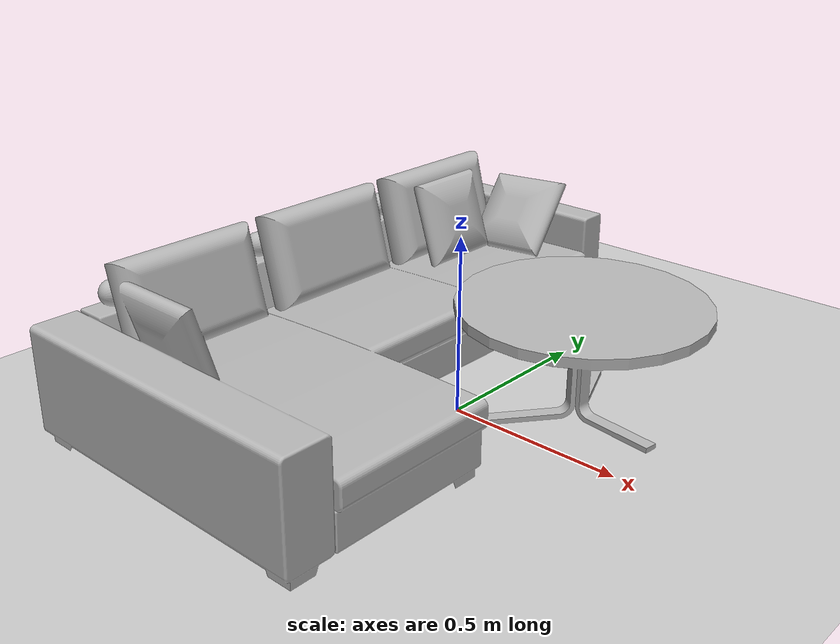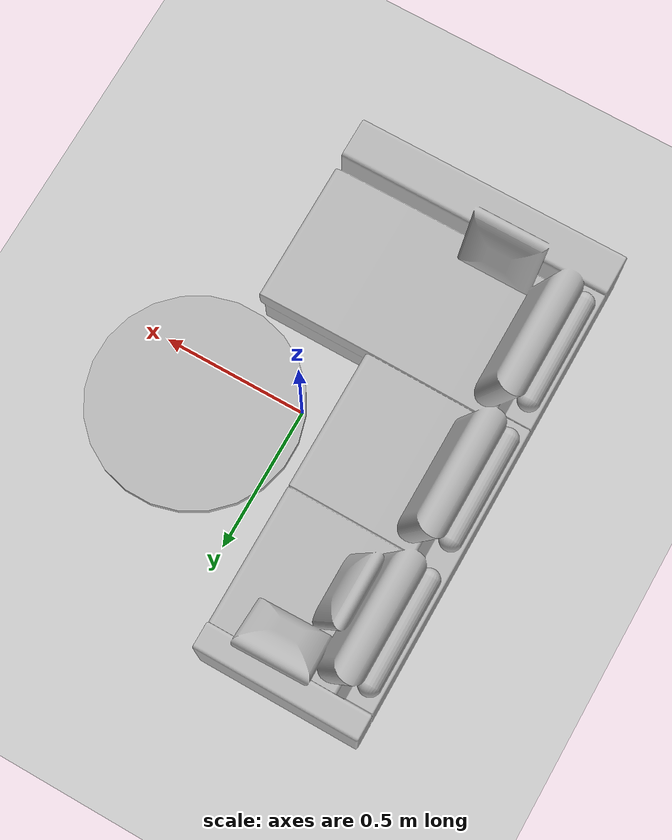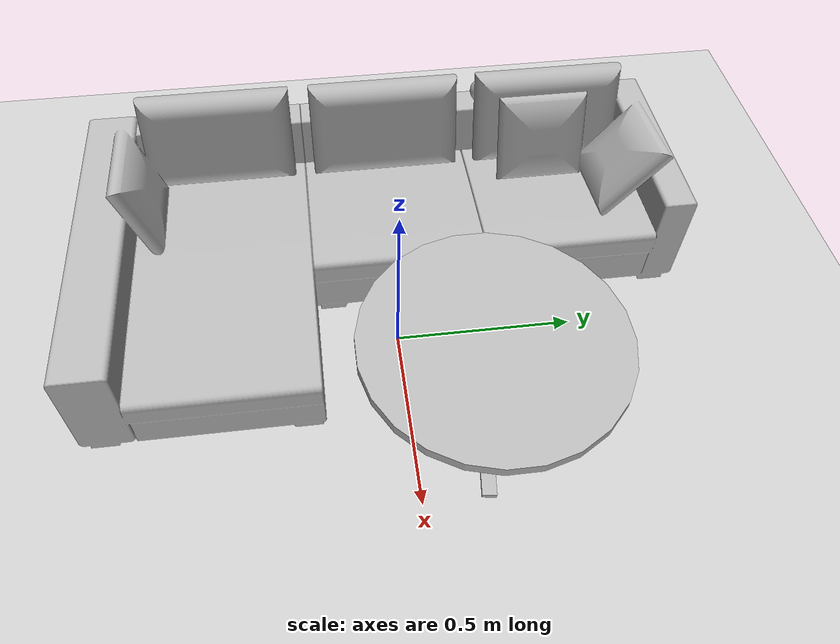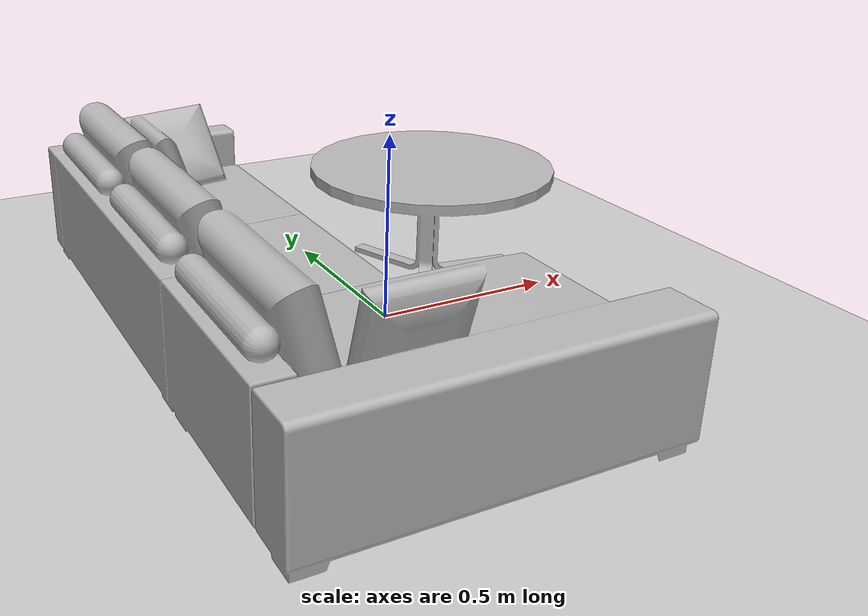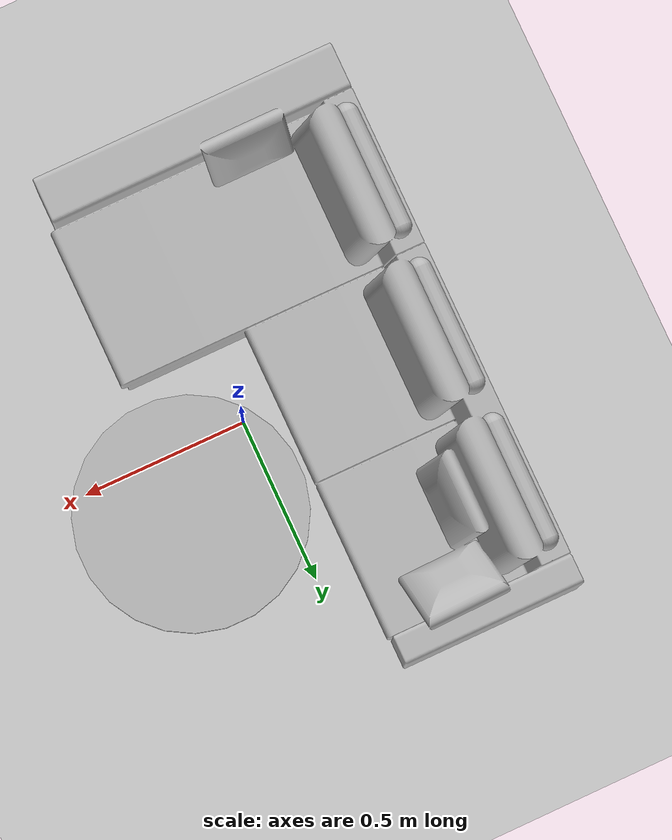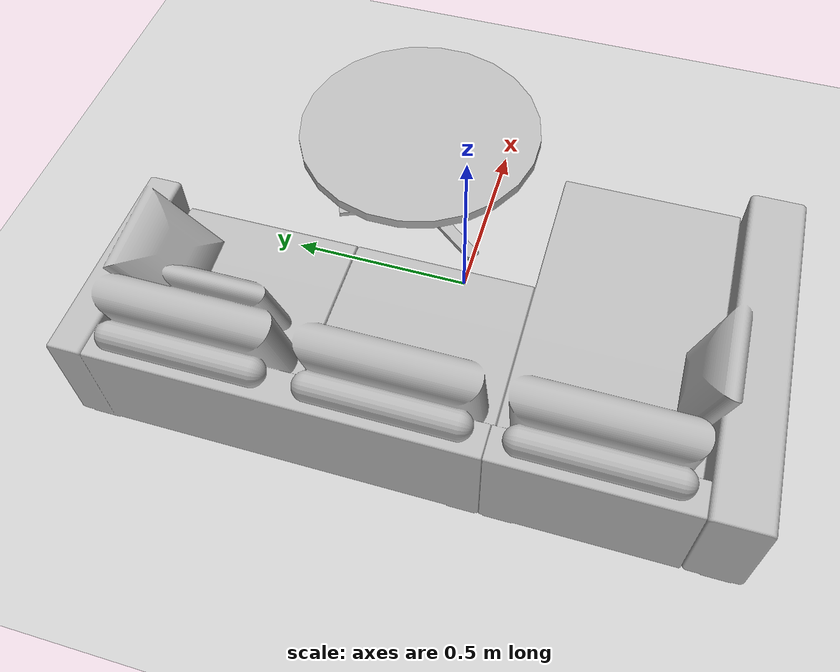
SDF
<sdf version='1.7'>
  <world name='default'>
    <scene>
      <ambient>0.7 0.7 0.7 1</ambient>
      <background>0.0 0.0 0.0 1</background>
      <shadows>0</shadows>
    </scene>
    <light name='user_directional_light_0' type='directional'>
      <pose>0 0 5 0 -0 0</pose>
      <diffuse>0.6 0.6 0.6 1</diffuse>
      <specular>0.4 0.4 0.4 1</specular>
      <direction>0 0. -1</direction>
      <attenuation>
        <range>20</range>
        <constant>1</constant>
        <linear>0.00</linear>
        <quadratic>0.00</quadratic>
      </attenuation>
      <cast_shadows>1</cast_shadows>
    </light>
    <light name='user_directional_light_1' type='directional'>
      <pose>-5 0 0.5 0 0 0</pose>
      <diffuse>0.6 0.6 0.6 1</diffuse>
      <specular>0.4 0.4 0.4 1</specular>
      <direction>1 0 0</direction>
      <attenuation>
        <range>20</range>
        <constant>1</constant>
        <linear>0.00</linear>
        <quadratic>0.00</quadratic>
      </attenuation>
      <cast_shadows>1</cast_shadows>
    </light>
    <light name='user_directional_light_2' type='directional'>
      <pose>5 0 0.5 0 0 0</pose>
      <diffuse>0.6 0.6 0.6 1</diffuse>
      <specular>0.4 0.4 0.4 1</specular>
      <direction>-1 0 0</direction>
      <attenuation>
        <range>20</range>
        <constant>1</constant>
        <linear>0.00</linear>
        <quadratic>0.00</quadratic>
      </attenuation>
      <cast_shadows>1</cast_shadows>
    </light>
    <light name='user_directional_light_3' type='directional'>
      <pose>0 5 0.5 0 -0 0</pose>
      <diffuse>0.6 0.6 0.6 1</diffuse>
      <specular>0.4 0.4 0.4 1</specular>
      <direction>0 -1 0</direction>
      <attenuation>
        <range>20</range>
        <constant>1</constant>
        <linear>0.00</linear>
        <quadratic>0.00</quadratic>
      </attenuation>
      <cast_shadows>1</cast_shadows>
    </light>
    <light name='user_directional_light_4' type='directional'>
      <pose>0 -5 0.5 0 -0 0</pose>
      <diffuse>0.6 0.6 0.6 1</diffuse>
      <specular>0.4 0.4 0.4 1</specular>
      <direction>0 1 0</direction>
      <attenuation>
        <range>20</range>
        <constant>1</constant>
        <linear>0.00</linear>
        <quadratic>0.00</quadratic>
      </attenuation>
      <cast_shadows>1</cast_shadows>
    </light>

    <model name='ground'>
      <include>
        <uri>model://ground</uri>
      </include>
      <static>1</static>
    </model>

    <model name='sofa'>
        <include>
            <uri>model://sofa</uri>
        </include>
        <static>1</static>
    </model>
    <model name='table'>
        <include>
            <uri>model://table</uri>
        </include>
        <static>1</static>
    </model>

  </world>

</sdf>

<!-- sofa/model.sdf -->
<sdf version="1.6">
  <model name="sofa">
    <static>true</static>
    <link name="link">
      <visual name="visual">
        <pose>-0.4 0 0.23 1.570796 0 -1.570796</pose>
        <geometry>
          <mesh>
            <scale>2 2 2</scale>
            <uri>model://sofa/models/model_normalized.obj</uri>
          </mesh>
        </geometry>
      </visual>
    </link>
  </model>
</sdf>

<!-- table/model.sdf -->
<sdf version="1.6">
  <model name="table">
    <static>true</static>
    <link name="link">
      <visual name="visual">
        <pose>0.25 0.2 0.1 1.570796 0 -1.570796</pose>
        <geometry>
          <mesh>
            <scale>1 1 1</scale>
            <uri>model://table/models/model_normalized.obj</uri>
          </mesh>
        </geometry>
      </visual>
    </link>
  </model>
</sdf>
